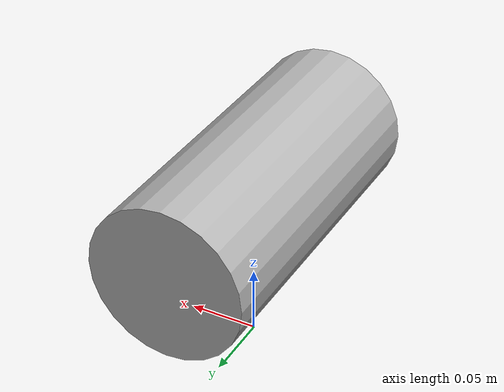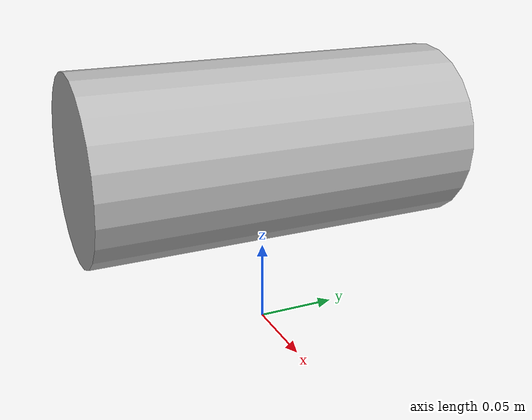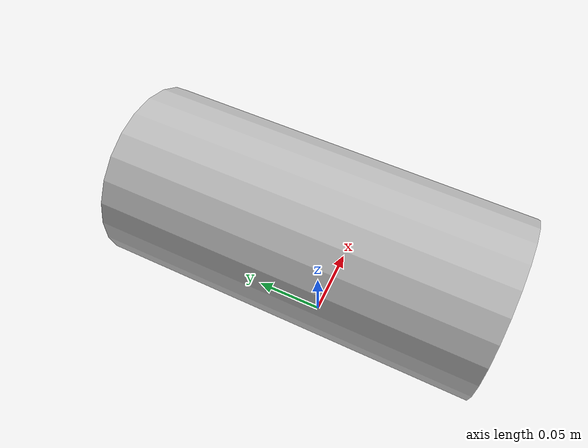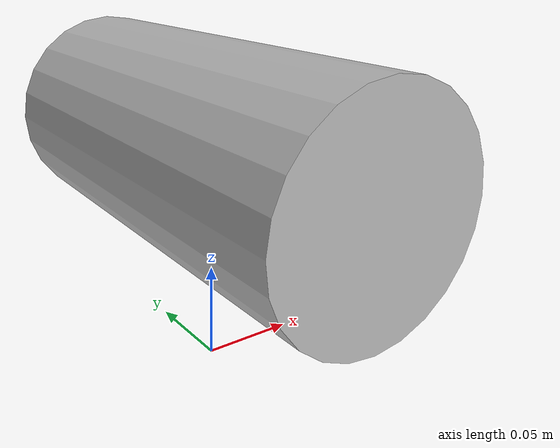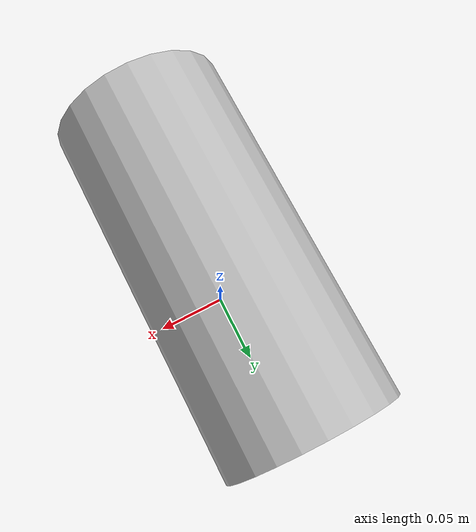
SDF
<?xml version='1.0'?>
<sdf version='1.4'>
  <model name="beer">
    <link name='link'>
      <pose>0 0 0.115 1.5707963267948966 0 0</pose>
      <inertial>
        <mass>0.390</mass>
        <inertia>
          <ixx>0.00058</ixx>
          <ixy>0</ixy>
          <ixz>0</ixz>
          <iyy>0.00058</iyy>
          <iyz>0</iyz>
          <izz>0.00019</izz>
        </inertia>
      </inertial>
      <collision name='collision'>
        <geometry>
          <cylinder>
            <radius>0.055000</radius>
            <length>0.230000</length>
          </cylinder>
        </geometry>
      </collision>

      <visual name='visual'>
        <geometry>
          <cylinder>
            <radius>0.055000</radius>
            <length>0.230000</length>
          </cylinder>
        </geometry>

        <material>
          <script>
            <uri>model://beer/materials/scripts</uri>
            <uri>model://beer/materials/textures</uri>
            <name>Beer/Diffuse</name>
          </script>
        </material>
      </visual>
    </link>
  </model>
</sdf>
